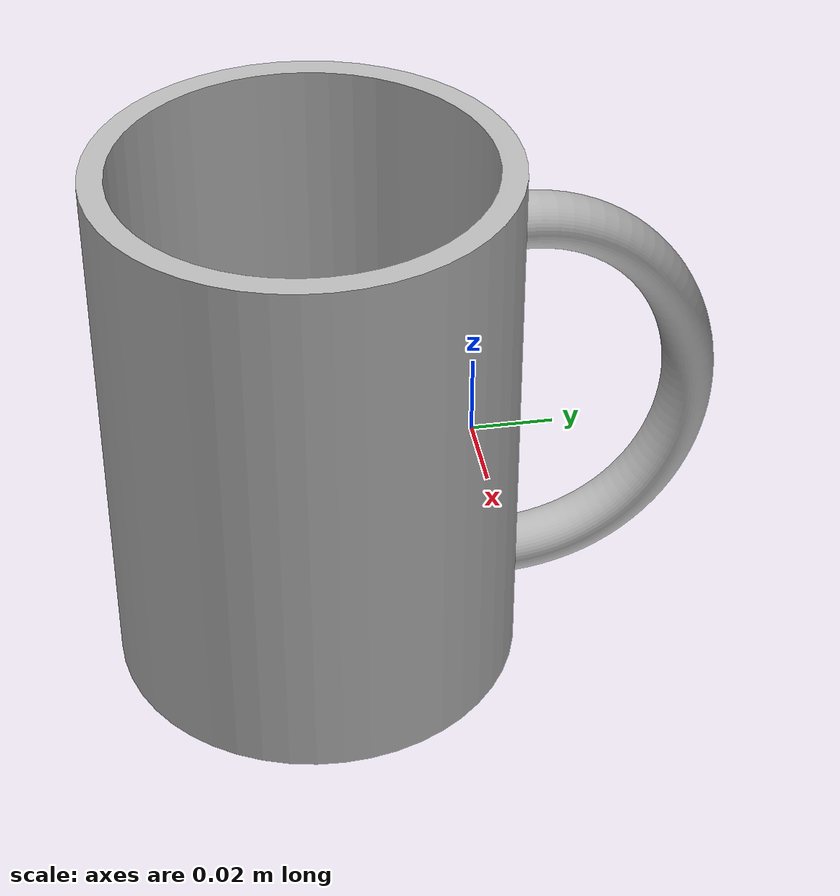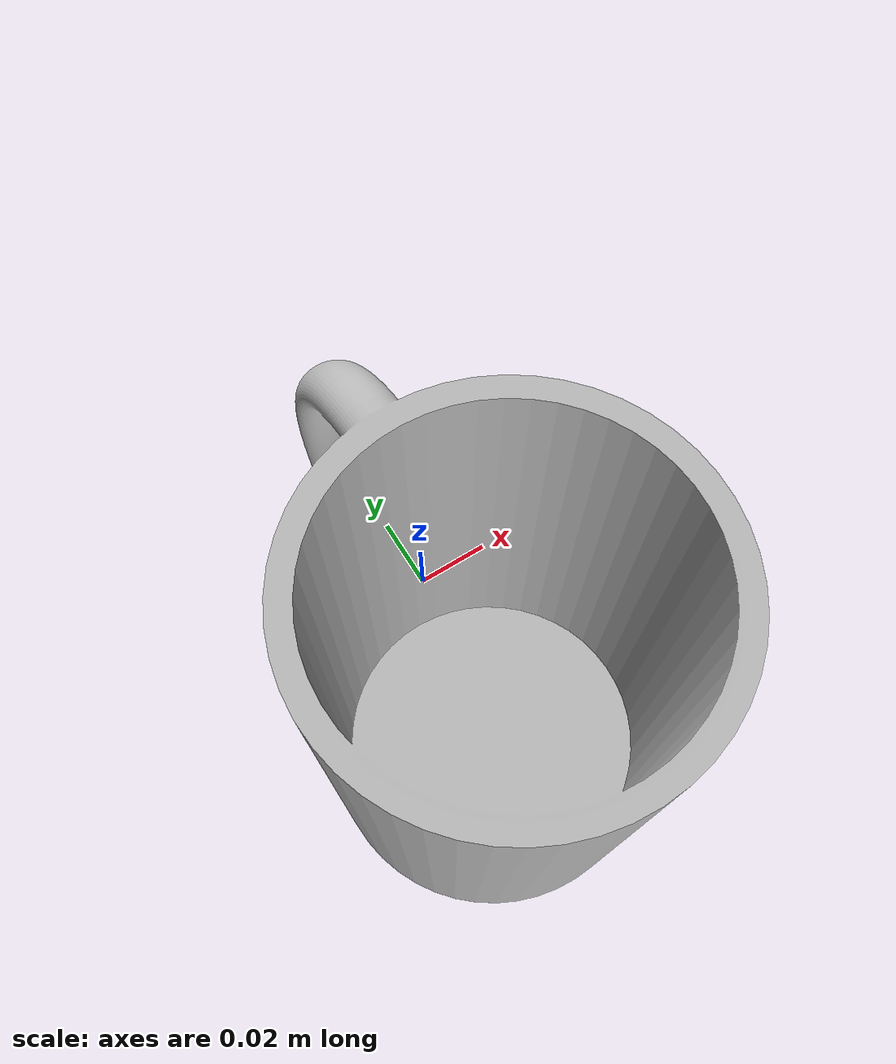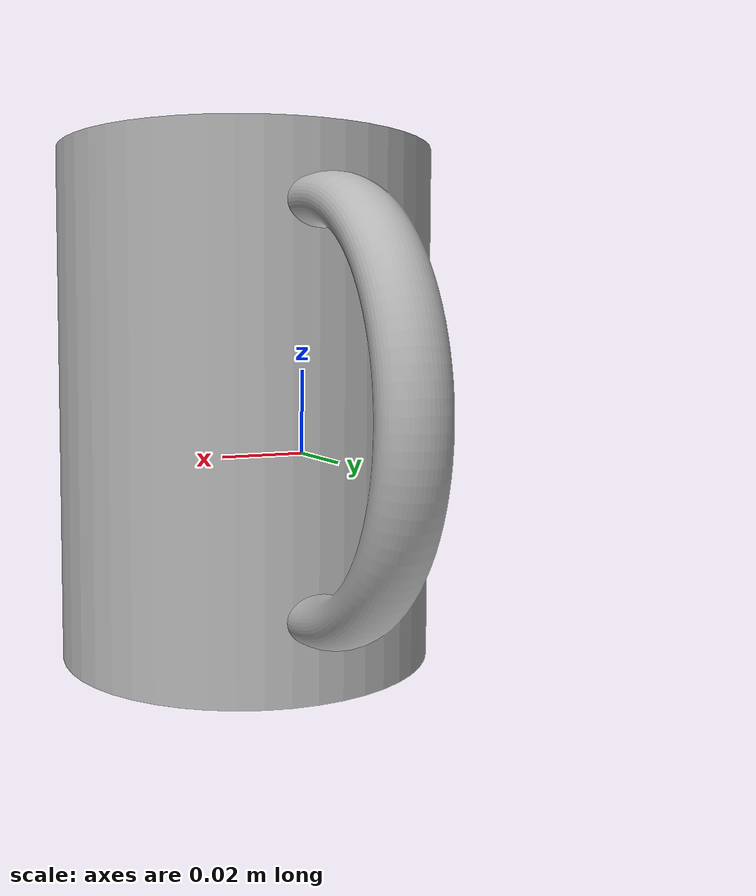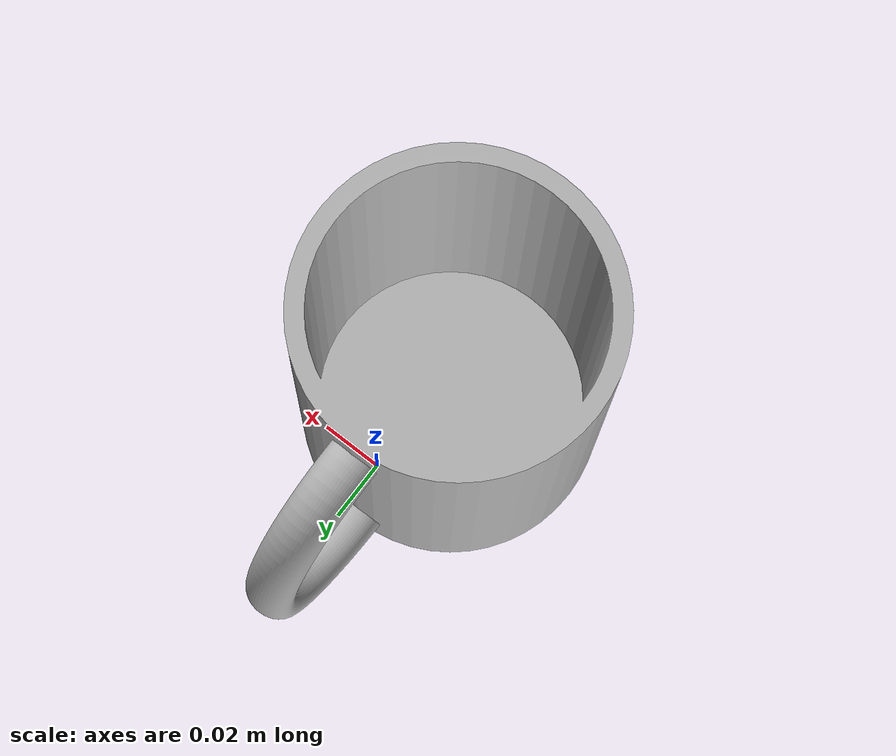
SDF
<?xml version="1.0" ?>
<sdf version="1.4">
  <model name="cup">
    <static>true</static>
    <link name="link">
      <visual name="visual">
        <pose>0 0 0 0 0 0</pose>
        <geometry>
          <mesh>
            <uri>model://cup/meshes/cup.dae</uri>
	    <scale>0.5 0.5 0.5</scale>
          </mesh>
        </geometry>
      </visual>
      <collision name="collision">
        <pose>0 0 0 0 0 0</pose>
        <geometry>
          <mesh>
            <uri>model://cup/meshes/cup.dae</uri>
	    <scale>0.5 0.5 0.5</scale>
          </mesh>
        </geometry>
      </collision>
    </link>
  </model>
</sdf>
